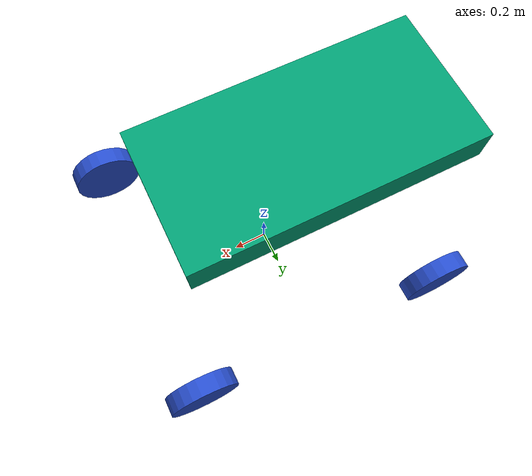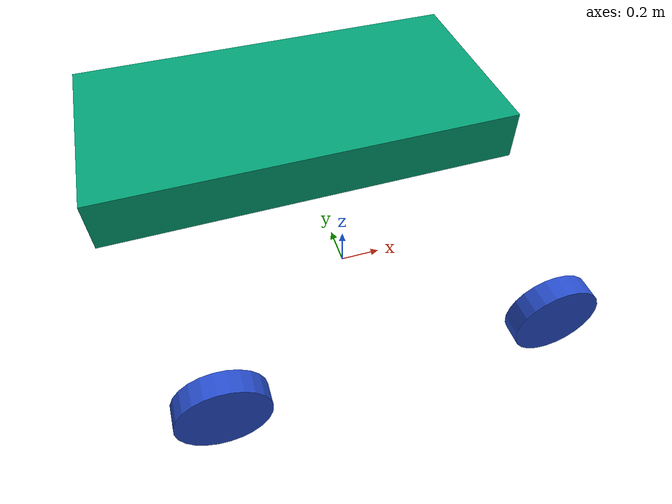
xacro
<?xml version="1.0"?>

<robot name='robot' xmlns:xacro="http://ros.org/wiki/xacro">

  <xacro:property name="wheel_offset_x" value="0.226"/>
  <xacro:property name="wheel_offset_y" value="0.1485"/>
  <xacro:property name="wheel_offset_z" value="-1.0"/>

  <xacro:property name="wheel_radius" value="0.2"/>
  <xacro:property name="wheel_width" value="0.1"/>

  <xacro:property name="body_height" value="0.2"/>
  <xacro:property name="body_width" value="0.8"/>
  <xacro:property name="body_length" value="1.6"/>

  <xacro:property name="wheeltrack" value="1.5"/>
  <xacro:property name="wheelbase" value="1.5"/>

  <xacro:property name="chassis_offset_z" value="0.2"/>
  <xacro:property name="chassis_offset_y" value="0.0"/>
  <xacro:property name="chassis_offset_x" value="0.0"/>

  <xacro:include filename="$(find robot_description)/urdf/gazebo.urdf.xacro" />

  <link name="base_link">
  </link>

  <link name="base_footprint">
  </link>

  <joint name="base_footprint_joint" type="fixed">
    <parent link="base_link"/>
    <child link="base_footprint"/>
    <origin rpy="0 0 0" xyz="0 0 -0.138"/>
  </joint>

  <joint name="body_joint" type="fixed">
    <parent link="base_link"/>
    <child link="body_link"/>
    <origin xyz="${-wheel_offset_x} 0 ${-wheel_offset_z}"/>
  </joint>

  <link name="body_link">
    <visual>
      <geometry>
        <box size="${body_length} ${body_width} ${body_height}"/>
      </geometry>
    </visual>
    <collision>
      <geometry>
        <box size="${body_length} ${body_width} ${body_height}"/>
      </geometry>
    </collision>
  </link>

  <gazebo reference="body">
    <material>Gazebo/Blue</material>
  </gazebo>

  <xacro:macro name="wheel" params="prefix">
    <link name="${prefix}_wheel_link">
      <visual>
        <geometry>
          <cylinder length="${wheel_width}" radius="${wheel_radius}"/>
        </geometry>
        <origin rpy="${pi/2} 0 0" xyz="0 0 0"/>
      </visual>
      <collision>
        <geometry>
          <cylinder length="${wheel_width}" radius="${wheel_radius}"/>
        </geometry>
        <origin rpy="${pi/2} 0 0" xyz="0 0 0"/>
      </collision>
      <inertial>
        <origin rpy="${pi/2} 0 0" xyz="0 0 0"/>
        <mass value="1.0"/>
        <inertia ixx="0.1" ixy="0.0" ixz="0.0" iyy="0.1" iyz="0.0" izz="0.1"/>
      </inertial>
    </link>
    <gazebo reference="${prefix}_wheel_link">
        <material>Gazebo/Blue</material>
    </gazebo>
  </xacro:macro>

  <xacro:wheel prefix="front_left"/>
  <xacro:wheel prefix="front_right"/>
  <xacro:wheel prefix="rear_left"/>
  <xacro:wheel prefix="rear_right"/>

  <xacro:macro name="wheel_joint" params="prefix origin_xyz">
    <joint name="${prefix}_wheel_joint" type="continuous">
      <origin xyz="${origin_xyz}"/>
      <parent link="base_link"/>
      <child link="${prefix}_wheel_link"/>
      <axis xyz="0 1 0"/>
    </joint>
  </xacro:macro>

  <xacro:wheel_joint prefix="front_left" origin_xyz="${wheelbase / 2 + chassis_offset_x} ${wheeltrack / 2 + chassis_offset_y} ${chassis_offset_z}"/>
  <xacro:wheel_joint prefix="front_right" origin_xyz="${wheelbase / 2 + chassis_offset_x} ${-wheeltrack / 2 + chassis_offset_y} ${chassis_offset_z}"/>
  <xacro:wheel_joint prefix="rear_left" origin_xyz="${-wheelbase / 2 + chassis_offset_x} ${wheeltrack / 2 + chassis_offset_y} ${chassis_offset_z}"/>
  <xacro:wheel_joint prefix="rear_right" origin_xyz="${-wheelbase / 2 + chassis_offset_x} ${-wheeltrack / 2 + chassis_offset_y} ${chassis_offset_z}"/>

</robot>
